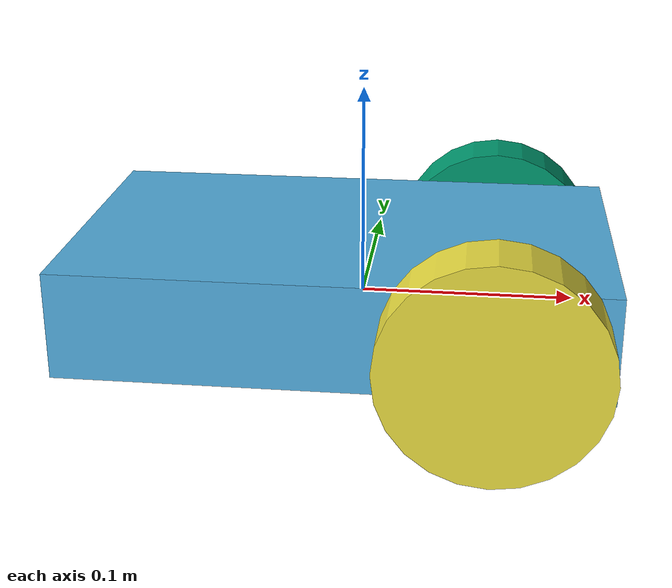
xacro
<?xml version="1.0" ?>
<robot name="bfl_3" xmlns:xacro="http://ros.org/wiki/xacro">

  <xacro:include filename="$(find dharmendra_model)/gazebo/bfl_3/bfl_3_material.gazebo" />
  <xacro:include filename="$(find dharmendra_model)/gazebo/bfl_3/bfl_3_physics.gazebo" />
  <xacro:include filename="$(find dharmendra_model)/gazebo/bfl_3/bfl_3_plugins.gazebo" />

  <joint name="bfl_3__left_wheel" type="revolute">
    <parent link="bfl_3__link_0"/>
    <child link="bfl_3__link_1"/>
    <origin xyz="0.06312  0.09131 -0.00312" rpy="1.5708 0     0"/>
    <axis xyz="0 0 1"/>
    <limit lower="-1.79769e+308" upper="1.79769e+308" effort="-1.0" velocity="-1.0"/>
  </joint>
  <joint name="bfl_3__right_wheel" type="revolute">
    <parent link="bfl_3__link_0"/>
    <child link="bfl_3__link_1_clone"/>
    <origin xyz="0.06312 -0.0909   0.00687" rpy="1.5708 0     0"/>
    <axis xyz="0 0 1"/>
    <limit lower="-1.79769e+308" upper="1.79769e+308" effort="-1.0" velocity="-1.0"/>
  </joint>
  <joint name="bfl_3__caster_wheel" type="revolute">
    <parent link="bfl_3__link_0"/>
    <child link="bfl_3__caster_wheel__revolute_dummy_link"/>
    <origin xyz="-0.11771 -0.00073 -0.03562" rpy="0 0 0"/>
    <axis xyz="1 0 0"/>
    <limit lower="-1.79769e+308" upper="1.79769e+308" effort="-1.0" velocity="-1.0"/>
  </joint>
  <link name="bfl_3__caster_wheel__revolute_dummy_link"/>
  <joint name="bfl_3__caster_wheel__revolute_dummy_joint" type="revolute">
    <parent link="bfl_3__caster_wheel__revolute_dummy_link"/>
    <child link="bfl_3__link_2"/>
    <axis xyz="0 1 0"/>
    <limit lower="-1e+16" upper="1e+16" effort="-1.0" velocity="-1.0"/>
  </joint>
  <link name="bfl_3__link_0">
    <inertial>
      <mass value="1"/>
      <origin xyz="0 0 0" rpy="0 0 0"/>
      <inertia ixx="0.166667" ixy="0" ixz="0" iyy="0.166667" iyz="0" izz="0.166667"/>
    </inertial>
    <collision name="bfl_3__collision">
      <origin xyz="-0.00852  0.00032  0.00687" rpy="0 0 0"/>
      <geometry>
        <box size="0.25 0.15 0.05"/>
      </geometry>
    </collision>
    <visual name="bfl_3__visual">
      <origin xyz="-0.00852  0.00032  0.00687" rpy="0 0 0"/>
      <geometry>
        <box size="0.25 0.15 0.05"/>
      </geometry>
    </visual>
  </link>
  <link name="bfl_3__link_1">
    <inertial>
      <mass value="1"/>
      <origin xyz="0 0 0" rpy="0 0 0"/>
      <inertia ixx="0.145833" ixy="0" ixz="0" iyy="0.145833" iyz="0" izz="0.125"/>
    </inertial>
    <collision name="bfl_3__collision">
      <origin xyz="0 0 0" rpy="0 0 0"/>
      <geometry>
        <cylinder radius="0.05" length="0.03"/>
      </geometry>
    </collision>
    <visual name="bfl_3__visual">
      <origin xyz="0 0 0" rpy="0 0 0"/>
      <geometry>
        <cylinder radius="0.05" length="0.03"/>
      </geometry>
    </visual>
  </link>
  <link name="bfl_3__link_1_clone">
    <inertial>
      <mass value="1"/>
      <origin xyz="0 0 0" rpy="0 0 0"/>
      <inertia ixx="0.145833" ixy="0" ixz="0" iyy="0.145833" iyz="0" izz="0.125"/>
    </inertial>
    <collision name="bfl_3__collision">
      <origin xyz="0 0 0" rpy="0 0 0"/>
      <geometry>
        <cylinder radius="0.05" length="0.03"/>
      </geometry>
    </collision>
    <visual name="bfl_3__visual">
      <origin xyz="0 0 0" rpy="0 0 0"/>
      <geometry>
        <cylinder radius="0.05" length="0.03"/>
      </geometry>
    </visual>
  </link>
  <link name="bfl_3__link_2">
    <inertial>
      <mass value="1"/>
      <origin xyz="0 0 0" rpy="0 0 0"/>
      <inertia ixx="0.1" ixy="0" ixz="0" iyy="0.1" iyz="0" izz="0.1"/>
    </inertial>
    <collision name="bfl_3__collision">
      <origin xyz="0 0 0" rpy="0 0 0"/>
      <geometry>
        <sphere radius="0.0175"/>
      </geometry>
    </collision>
    <visual name="bfl_3__visual">
      <origin xyz="0 0 0" rpy="0 0 0"/>
      <geometry>
        <sphere radius="0.0175"/>
      </geometry>
    </visual>
  </link>
</robot>

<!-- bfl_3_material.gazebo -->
<robot name="bfl_3" xmlns:xacro="http://ros.org/wiki/xacro">
  <xacro:property name="body_color" value="Gazebo/Red"/>
  <xacro:property name="body_color1" value="Gazebo/Blue"/>

   <!-- chassy -->
  <gazebo reference="link_0">
    <material>${body_color}</material>
  </gazebo>

  <!-- front_left_wheel -->
  <gazebo reference="link_1">
    <material>${body_color1}</material>
  </gazebo>

  <!-- front_right_wheel -->
  <gazebo reference="link_1_clone">
    <material>${body_color1}</material>
  </gazebo>

  <!-- caster_wheel -->
   <gazebo reference="link_2">
    <material>${body_color1}</material>
  </gazebo>
</robot>
